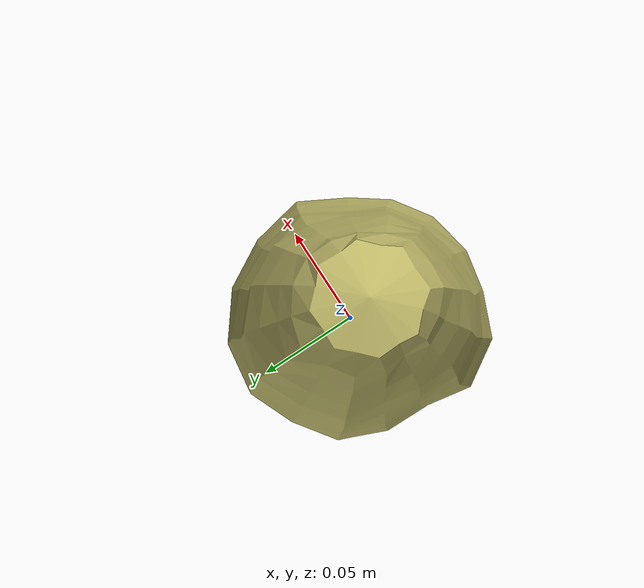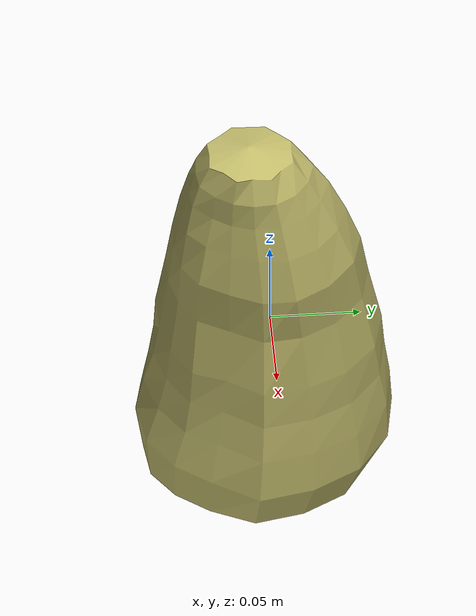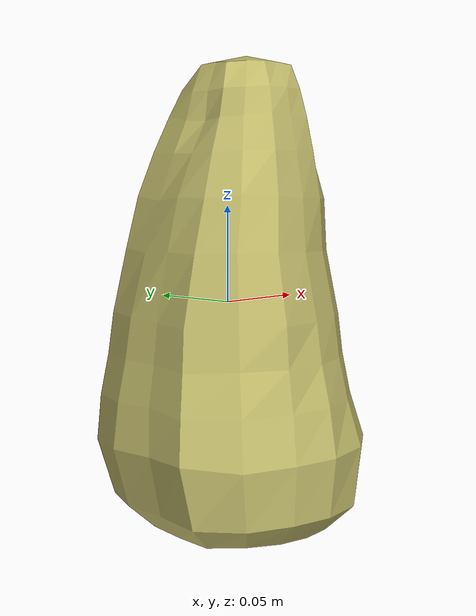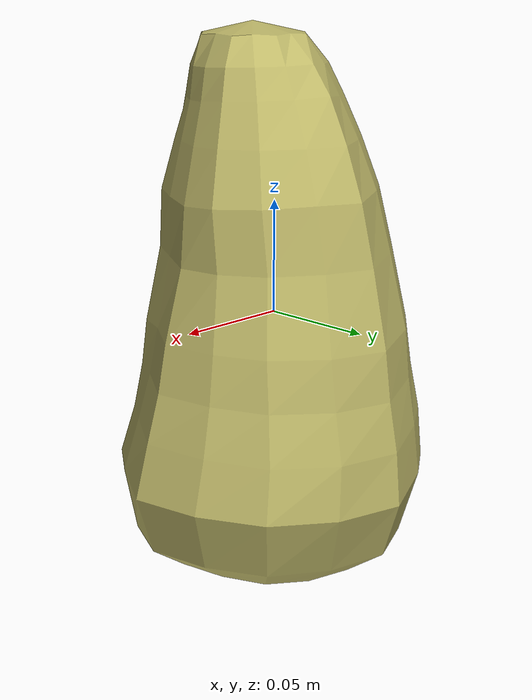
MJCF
<mujoco model="Lettuce_8">
  <compiler autolimits="true" boundmass="0.01" angle="radian"/>
  <default>
    <default class="/">
      <default class="__VISUAL_MJT__">
        <geom contype="0" conaffinity="0" group="0"/>
      </default>
      <default class="__STRUCTURAL_MJT__">
        <geom contype="8" conaffinity="15" group="4" friction="0.90000000000000002 0.90000000000000002 0.001" solref="0.025000000000000001 1" solimp="0.998 0.998 0.001"/>
      </default>
      <default class="__DYNAMIC_MJT__">
        <geom contype="1" conaffinity="15" group="4" friction="0.90000000000000002 0.90000000000000002 0.001" solref="0.025000000000000001 1" solimp="0.998 0.998 0.001"/>
      </default>
    </default>
  </default>
  <asset>
    <texture name="Lettuce1_Mat" type="2d" file="Lettuce1_AlbedoTransparency.png"/>
    <material name="material_Lettuce1_Mat" class="/" texture="Lettuce1_Mat" specular="0.5" shininess="0.5" rgba="0.9945233 1 0.60294119999999995 1"/>
    <mesh name="Lettuce_8_lettuce_a8" class="/" file="Lettuce_8_lettuce_a8/Lettuce_8_lettuce_a8.obj" scale="1 1 1"/>
  </asset>
  <worldbody>
    <body name="Lettuce_8">
      <joint name="Lettuce_8_free" class="/" type="free" pos="0 0 0" axis="0 0 1" stiffness="0" range="0 0" armature="0" damping="0.10000000000000001" frictionloss="0"/>
      <body name="Lettuce_8_lettuce_a8" pos="0.00080000000000000004 -0.00779 0.0032599999999999999" quat="1 0 0 0">
        <geom name="Lettuce_8_lettuce_a8" class="__VISUAL_MJT__" type="mesh" material="material_Lettuce1_Mat" shellinertia="true" mesh="Lettuce_8_lettuce_a8"/>
        <geom name="Lettuce_8_PrimitiveCollider_0" class="__DYNAMIC_MJT__" type="capsule" size="0.06840379536151886 0.0060345381498336792" rgba="0 1 0 1" pos="0.00079999997979030013 0.0077880853787064552 -0.057880539447069168" quat="0.99999999999891198 1.4751396607739272e-06 0 0"/>
        <geom name="Lettuce_8_PrimitiveCollider_1" class="__DYNAMIC_MJT__" type="capsule" size="0.040327984839677811 0.0084743835031986237" rgba="0 1 0 1" pos="0.0013766000047326088 0.0011493341298773885 0.076995603740215302" quat="0.99999999999891198 1.4751396607739272e-06 0 0"/>
        <geom name="Lettuce_8_PrimitiveCollider_2" class="__DYNAMIC_MJT__" type="capsule" size="0.056023102253675461 0.012458119541406631" rgba="0 1 0 1" pos="0.00080013275146484375 0.0077880360186100006 0.0078517533838748932" quat="0.99999999999891198 1.4751396607739272e-06 0 0"/>
      </body>
    </body>
  </worldbody>
</mujoco>
